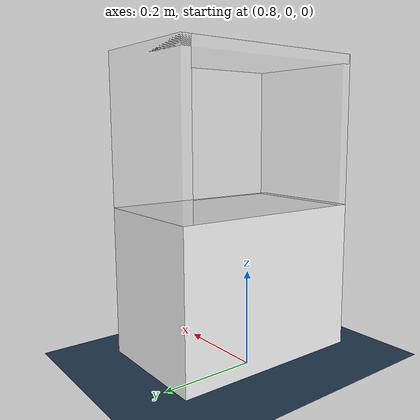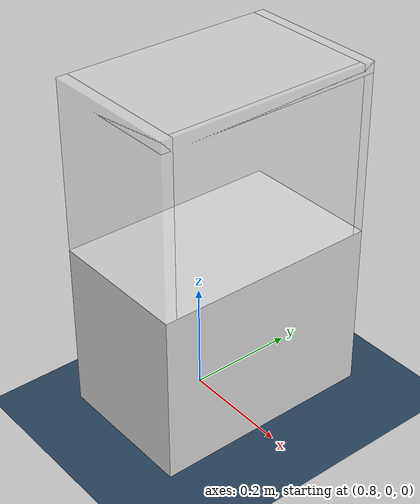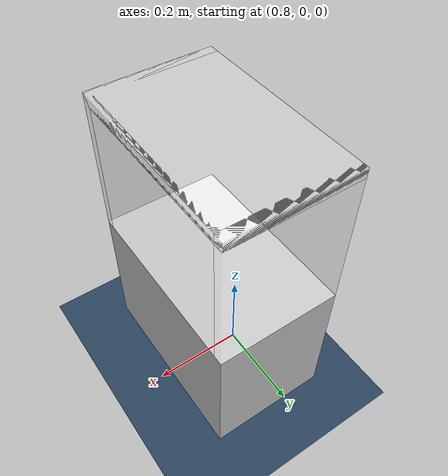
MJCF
<mujoco model="World">
  <compiler angle="radian" />
  <option integrator="implicitfast" cone="elliptic" solver="CG" noslip_iterations="2">
    <flag warmstart="disable" multiccd="enable" />
  </option>
  <default>
    <geom density="10" />
  </default>
  <asset>
    <texture type="skybox" builtin="flat" rgb1="1 1 1" rgb2="0 0 0" width="512" height="3072" />
    <texture type="2d" name="grid" builtin="checker" rgb1="0.1 0.2 0.3" rgb2="0.2 0.3 0.4" width="512" height="512" />
    <material name="grid" texture="grid" texuniform="true" texrepeat="0.5 0.5" emission="1" specular="0" shininess="0" />
  </asset>
  <worldbody>
    <geom name="floor" size="20 20 0.05" type="plane" material="grid" />
    <light pos="-0.5 0.5 5" dir="0 0 -1" castshadow="false" diffuse="1 1 1" />
    <body name="scene" />
    <body name="shelf" pos="0.85 0 0.02">
      <camera name="top_view" pos="0 0 0.9" quat="1 0 0 0" fovy="50"/>
      <!-- Shelf base (table) -->
      <geom name="shelf_base" pos="0 0 0.155" size="0.13 0.205 0.155" type="box" rgba="0.9 0.9 0.9 1" />
      <!-- Back wall (toward robot, -X side) -->
      <geom name="shelf_back_wall" pos="0.125 0 0.465" size="0.005 0.185 0.155" type="box" rgba="0.9 0.9 0.9 0.3" />
      <!-- Left wall (+Y side) -->
      <geom name="shelf_left_wall" pos="0 0.195 0.465" size="0.13 0.01 0.155" type="box" rgba="0.9 0.9 0.9 0.3" />
      <!-- Right wall (-Y side) -->
      <geom name="shelf_right_wall" pos="0 -0.195 0.465" size="0.13 0.01 0.155" type="box" rgba="0.9 0.9 0.9 0.3" />
      <!-- Ceiling/top -->
      <geom name="shelf_ceiling" pos="0 0 0.61" size="0.13 0.205 0.01" type="box" rgba="0.9 0.9 0.9 0.3" />
    </body>
  </worldbody>
</mujoco>
